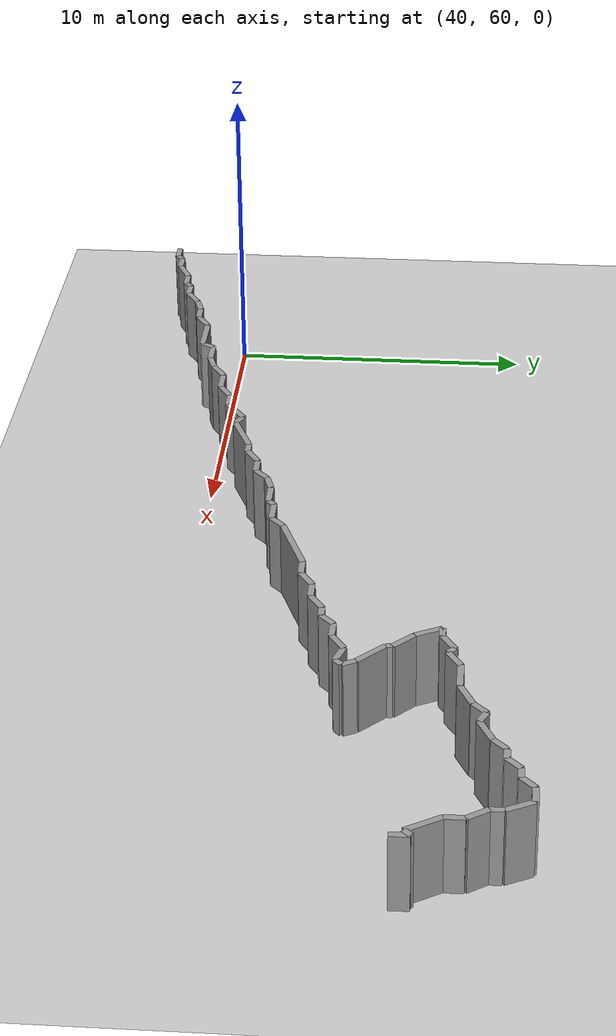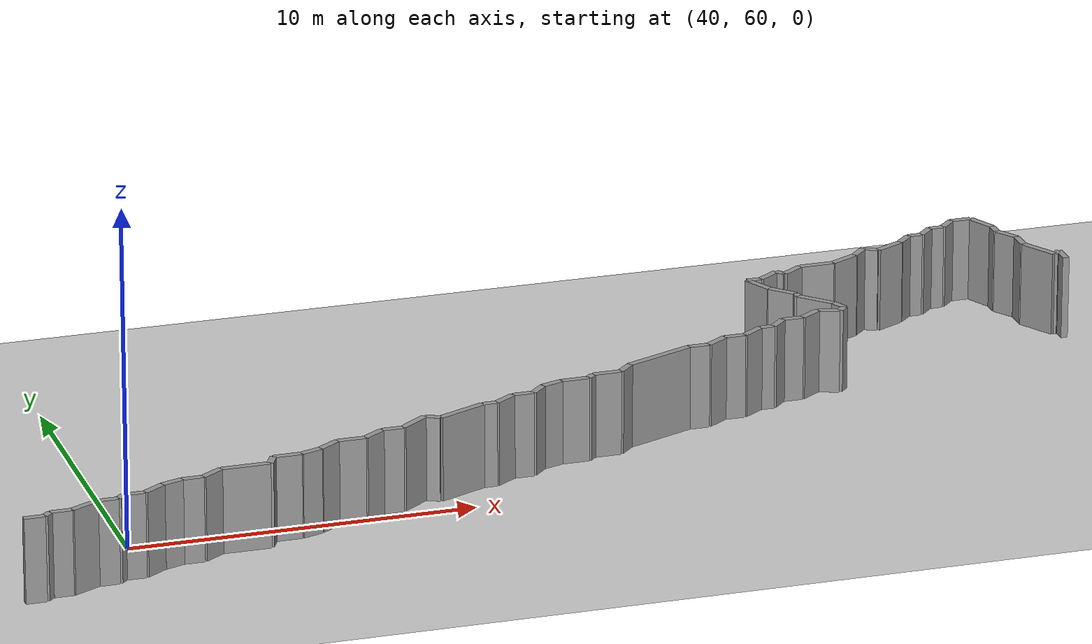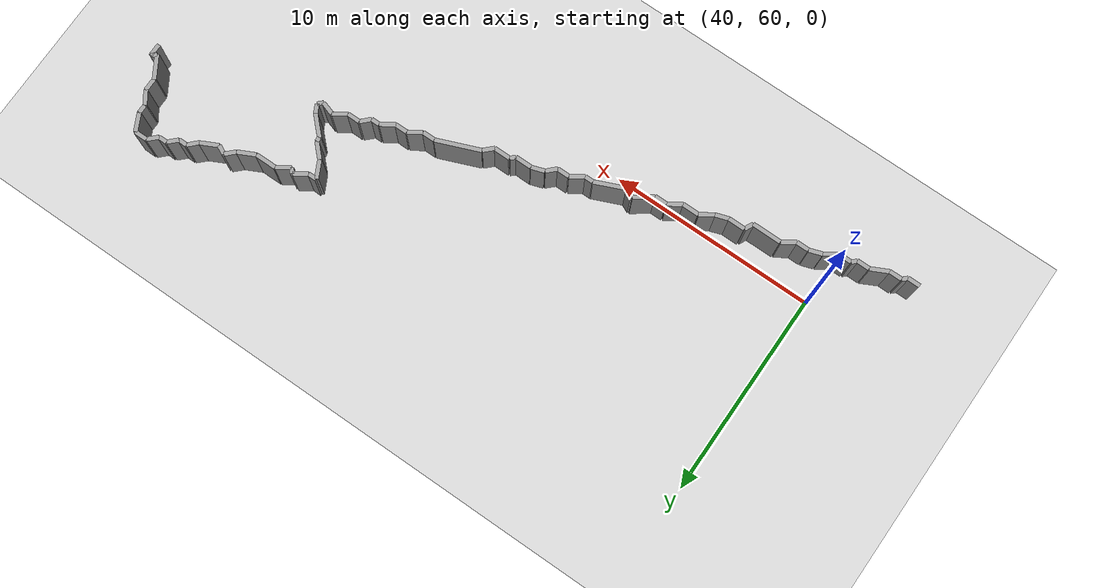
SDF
<sdf version="1.4">
 <world name="1_wall">
  <model name="ground_plane">
   <static>1</static>
   <link name="link">
    <collision name="collision">
     <geometry><plane><normal>0 0 1</normal><size>1000 1000</size></plane></geometry>
     <surface><friction><ode><mu>100</mu><mu2>50</mu2></ode></friction></surface>
    </collision>
    <visual name="visual">
     <cast_shadows>0</cast_shadows>
     <geometry><plane><normal>0 0 1</normal><size>10000 10000</size></plane></geometry>
     <material>
      <script><uri>file://media/materials/scripts/gazebo.material</uri><name>Gazebo/Grey</name></script>
     </material>
    </visual>
    <velocity_decay><linear>0</linear><angular>0</angular></velocity_decay>
   </link>
  </model>
  <model name="Wall_70">
   <static>1</static>
   <link name="Wall_70">
    <collision name="Wall_Collision_70">
     <geometry><box><size>0.6 0.2 2.5</size></box></geometry>
     <pose>0 0 1.25 0 -0 0</pose>
    </collision>
    <visual name="Wall_Visual_70">
     <pose>0 0 1.25 0 -0 0</pose>
     <geometry><box><size>0.6 0.2 2.5</size></box></geometry>
     <material>
      <script><uri>file://media/materials/scripts/gazebo.material</uri><name>Gazebo/Grey</name></script>
     </material>
    </visual>
    <velocity_decay><linear>0</linear><angular>0</angular></velocity_decay>
    <pose>36.7 57.2 0 0 0 0.0</pose>
   </link>
  </model>
  <model name="Wall_71">
   <static>1</static>
   <link name="Wall_71">
    <collision name="Wall_Collision_71">
     <geometry><box><size>0.282842712475 0.2 2.5</size></box></geometry>
     <pose>0 0 1.25 0 -0 0</pose>
    </collision>
    <visual name="Wall_Visual_71">
     <pose>0 0 1.25 0 -0 0</pose>
     <geometry><box><size>0.282842712475 0.2 2.5</size></box></geometry>
     <material>
      <script><uri>file://media/materials/scripts/gazebo.material</uri><name>Gazebo/Grey</name></script>
     </material>
    </visual>
    <velocity_decay><linear>0</linear><angular>0</angular></velocity_decay>
    <pose>37.1 57.3 0 0 0 0.785398163397</pose>
   </link>
  </model>
  <model name="Wall_72">
   <static>1</static>
   <link name="Wall_72">
    <collision name="Wall_Collision_72">
     <geometry><box><size>0.6 0.2 2.5</size></box></geometry>
     <pose>0 0 1.25 0 -0 0</pose>
    </collision>
    <visual name="Wall_Visual_72">
     <pose>0 0 1.25 0 -0 0</pose>
     <geometry><box><size>0.6 0.2 2.5</size></box></geometry>
     <material>
      <script><uri>file://media/materials/scripts/gazebo.material</uri><name>Gazebo/Grey</name></script>
     </material>
    </visual>
    <velocity_decay><linear>0</linear><angular>0</angular></velocity_decay>
    <pose>37.5 57.4 0 0 0 0.0</pose>
   </link>
  </model>
  <model name="Wall_73">
   <static>1</static>
   <link name="Wall_73">
    <collision name="Wall_Collision_73">
     <geometry><box><size>0.894427191 0.2 2.5</size></box></geometry>
     <pose>0 0 1.25 0 -0 0</pose>
    </collision>
    <visual name="Wall_Visual_73">
     <pose>0 0 1.25 0 -0 0</pose>
     <geometry><box><size>0.894427191 0.2 2.5</size></box></geometry>
     <material>
      <script><uri>file://media/materials/scripts/gazebo.material</uri><name>Gazebo/Grey</name></script>
     </material>
    </visual>
    <velocity_decay><linear>0</linear><angular>0</angular></velocity_decay>
    <pose>38.2 57.6 0 0 0 0.463647609001</pose>
   </link>
  </model>
  <model name="Wall_74">
   <static>1</static>
   <link name="Wall_74">
    <collision name="Wall_Collision_74">
     <geometry><box><size>0.6 0.2 2.5</size></box></geometry>
     <pose>0 0 1.25 0 -0 0</pose>
    </collision>
    <visual name="Wall_Visual_74">
     <pose>0 0 1.25 0 -0 0</pose>
     <geometry><box><size>0.6 0.2 2.5</size></box></geometry>
     <material>
      <script><uri>file://media/materials/scripts/gazebo.material</uri><name>Gazebo/Grey</name></script>
     </material>
    </visual>
    <velocity_decay><linear>0</linear><angular>0</angular></velocity_decay>
    <pose>38.9 57.8 0 0 0 0.0</pose>
   </link>
  </model>
  <model name="Wall_75">
   <static>1</static>
   <link name="Wall_75">
    <collision name="Wall_Collision_75">
     <geometry><box><size>0.282842712475 0.2 2.5</size></box></geometry>
     <pose>0 0 1.25 0 -0 0</pose>
    </collision>
    <visual name="Wall_Visual_75">
     <pose>0 0 1.25 0 -0 0</pose>
     <geometry><box><size>0.282842712475 0.2 2.5</size></box></geometry>
     <material>
      <script><uri>file://media/materials/scripts/gazebo.material</uri><name>Gazebo/Grey</name></script>
     </material>
    </visual>
    <velocity_decay><linear>0</linear><angular>0</angular></velocity_decay>
    <pose>39.3 57.9 0 0 0 0.785398163397</pose>
   </link>
  </model>
  <model name="Wall_76">
   <static>1</static>
   <link name="Wall_76">
    <collision name="Wall_Collision_76">
     <geometry><box><size>0.6 0.2 2.5</size></box></geometry>
     <pose>0 0 1.25 0 -0 0</pose>
    </collision>
    <visual name="Wall_Visual_76">
     <pose>0 0 1.25 0 -0 0</pose>
     <geometry><box><size>0.6 0.2 2.5</size></box></geometry>
     <material>
      <script><uri>file://media/materials/scripts/gazebo.material</uri><name>Gazebo/Grey</name></script>
     </material>
    </visual>
    <velocity_decay><linear>0</linear><angular>0</angular></velocity_decay>
    <pose>39.7 58.0 0 0 0 0.0</pose>
   </link>
  </model>
  <model name="Wall_77">
   <static>1</static>
   <link name="Wall_77">
    <collision name="Wall_Collision_77">
     <geometry><box><size>0.721110255093 0.2 2.5</size></box></geometry>
     <pose>0 0 1.25 0 -0 0</pose>
    </collision>
    <visual name="Wall_Visual_77">
     <pose>0 0 1.25 0 -0 0</pose>
     <geometry><box><size>0.721110255093 0.2 2.5</size></box></geometry>
     <material>
      <script><uri>file://media/materials/scripts/gazebo.material</uri><name>Gazebo/Grey</name></script>
     </material>
    </visual>
    <velocity_decay><linear>0</linear><angular>0</angular></velocity_decay>
    <pose>40.3 58.2 0 0 0 0.588002603548</pose>
   </link>
  </model>
  <model name="Wall_78">
   <static>1</static>
   <link name="Wall_78">
    <collision name="Wall_Collision_78">
     <geometry><box><size>0.632455532034 0.2 2.5</size></box></geometry>
     <pose>0 0 1.25 0 -0 0</pose>
    </collision>
    <visual name="Wall_Visual_78">
     <pose>0 0 1.25 0 -0 0</pose>
     <geometry><box><size>0.632455532034 0.2 2.5</size></box></geometry>
     <material>
      <script><uri>file://media/materials/scripts/gazebo.material</uri><name>Gazebo/Grey</name></script>
     </material>
    </visual>
    <velocity_decay><linear>0</linear><angular>0</angular></velocity_decay>
    <pose>40.9 58.5 0 0 0 0.321750554397</pose>
   </link>
  </model>
  <model name="Wall_79">
   <static>1</static>
   <link name="Wall_79">
    <collision name="Wall_Collision_79">
     <geometry><box><size>0.6 0.2 2.5</size></box></geometry>
     <pose>0 0 1.25 0 -0 0</pose>
    </collision>
    <visual name="Wall_Visual_79">
     <pose>0 0 1.25 0 -0 0</pose>
     <geometry><box><size>0.6 0.2 2.5</size></box></geometry>
     <material>
      <script><uri>file://media/materials/scripts/gazebo.material</uri><name>Gazebo/Grey</name></script>
     </material>
    </visual>
    <velocity_decay><linear>0</linear><angular>0</angular></velocity_decay>
    <pose>41.5 58.6 0 0 0 0.0</pose>
   </link>
  </model>
  <model name="Wall_80">
   <static>1</static>
   <link name="Wall_80">
    <collision name="Wall_Collision_80">
     <geometry><box><size>0.721110255093 0.2 2.5</size></box></geometry>
     <pose>0 0 1.25 0 -0 0</pose>
    </collision>
    <visual name="Wall_Visual_80">
     <pose>0 0 1.25 0 -0 0</pose>
     <geometry><box><size>0.721110255093 0.2 2.5</size></box></geometry>
     <material>
      <script><uri>file://media/materials/scripts/gazebo.material</uri><name>Gazebo/Grey</name></script>
     </material>
    </visual>
    <velocity_decay><linear>0</linear><angular>0</angular></velocity_decay>
    <pose>42.1 58.8 0 0 0 0.588002603548</pose>
   </link>
  </model>
  <model name="Wall_81">
   <static>1</static>
   <link name="Wall_81">
    <collision name="Wall_Collision_81">
     <geometry><box><size>1.4 0.2 2.5</size></box></geometry>
     <pose>0 0 1.25 0 -0 0</pose>
    </collision>
    <visual name="Wall_Visual_81">
     <pose>0 0 1.25 0 -0 0</pose>
     <geometry><box><size>1.4 0.2 2.5</size></box></geometry>
     <material>
      <script><uri>file://media/materials/scripts/gazebo.material</uri><name>Gazebo/Grey</name></script>
     </material>
    </visual>
    <velocity_decay><linear>0</linear><angular>0</angular></velocity_decay>
    <pose>43.1 59.0 0 0 0 0.0</pose>
   </link>
  </model>
  <model name="Wall_82">
   <static>1</static>
   <link name="Wall_82">
    <collision name="Wall_Collision_82">
     <geometry><box><size>0.4472135955 0.2 2.5</size></box></geometry>
     <pose>0 0 1.25 0 -0 0</pose>
    </collision>
    <visual name="Wall_Visual_82">
     <pose>0 0 1.25 0 -0 0</pose>
     <geometry><box><size>0.4472135955 0.2 2.5</size></box></geometry>
     <material>
      <script><uri>file://media/materials/scripts/gazebo.material</uri><name>Gazebo/Grey</name></script>
     </material>
    </visual>
    <velocity_decay><linear>0</linear><angular>0</angular></velocity_decay>
    <pose>43.9 59.2 0 0 0 1.10714871779</pose>
   </link>
  </model>
  <model name="Wall_83">
   <static>1</static>
   <link name="Wall_83">
    <collision name="Wall_Collision_83">
     <geometry><box><size>0.8 0.2 2.5</size></box></geometry>
     <pose>0 0 1.25 0 -0 0</pose>
    </collision>
    <visual name="Wall_Visual_83">
     <pose>0 0 1.25 0 -0 0</pose>
     <geometry><box><size>0.8 0.2 2.5</size></box></geometry>
     <material>
      <script><uri>file://media/materials/scripts/gazebo.material</uri><name>Gazebo/Grey</name></script>
     </material>
    </visual>
    <velocity_decay><linear>0</linear><angular>0</angular></velocity_decay>
    <pose>44.4 59.4 0 0 0 0.0</pose>
   </link>
  </model>
  <model name="Wall_84">
   <static>1</static>
   <link name="Wall_84">
    <collision name="Wall_Collision_84">
     <geometry><box><size>0.632455532034 0.2 2.5</size></box></geometry>
     <pose>0 0 1.25 0 -0 0</pose>
    </collision>
    <visual name="Wall_Visual_84">
     <pose>0 0 1.25 0 -0 0</pose>
     <geometry><box><size>0.632455532034 0.2 2.5</size></box></geometry>
     <material>
      <script><uri>file://media/materials/scripts/gazebo.material</uri><name>Gazebo/Grey</name></script>
     </material>
    </visual>
    <velocity_decay><linear>0</linear><angular>0</angular></velocity_decay>
    <pose>45.1 59.5 0 0 0 0.321750554397</pose>
   </link>
  </model>
  <model name="Wall_85">
   <static>1</static>
   <link name="Wall_85">
    <collision name="Wall_Collision_85">
     <geometry><box><size>0.721110255093 0.2 2.5</size></box></geometry>
     <pose>0 0 1.25 0 -0 0</pose>
    </collision>
    <visual name="Wall_Visual_85">
     <pose>0 0 1.25 0 -0 0</pose>
     <geometry><box><size>0.721110255093 0.2 2.5</size></box></geometry>
     <material>
      <script><uri>file://media/materials/scripts/gazebo.material</uri><name>Gazebo/Grey</name></script>
     </material>
    </visual>
    <velocity_decay><linear>0</linear><angular>0</angular></velocity_decay>
    <pose>45.7 59.8 0 0 0 0.588002603548</pose>
   </link>
  </model>
  <model name="Wall_86">
   <static>1</static>
   <link name="Wall_86">
    <collision name="Wall_Collision_86">
     <geometry><box><size>0.8 0.2 2.5</size></box></geometry>
     <pose>0 0 1.25 0 -0 0</pose>
    </collision>
    <visual name="Wall_Visual_86">
     <pose>0 0 1.25 0 -0 0</pose>
     <geometry><box><size>0.8 0.2 2.5</size></box></geometry>
     <material>
      <script><uri>file://media/materials/scripts/gazebo.material</uri><name>Gazebo/Grey</name></script>
     </material>
    </visual>
    <velocity_decay><linear>0</linear><angular>0</angular></velocity_decay>
    <pose>46.4 60.0 0 0 0 0.0</pose>
   </link>
  </model>
  <model name="Wall_87">
   <static>1</static>
   <link name="Wall_87">
    <collision name="Wall_Collision_87">
     <geometry><box><size>0.721110255093 0.2 2.5</size></box></geometry>
     <pose>0 0 1.25 0 -0 0</pose>
    </collision>
    <visual name="Wall_Visual_87">
     <pose>0 0 1.25 0 -0 0</pose>
     <geometry><box><size>0.721110255093 0.2 2.5</size></box></geometry>
     <material>
      <script><uri>file://media/materials/scripts/gazebo.material</uri><name>Gazebo/Grey</name></script>
     </material>
    </visual>
    <velocity_decay><linear>0</linear><angular>0</angular></velocity_decay>
    <pose>47.1 60.2 0 0 0 0.588002603548</pose>
   </link>
  </model>
  <model name="Wall_88">
   <static>1</static>
   <link name="Wall_88">
    <collision name="Wall_Collision_88">
     <geometry><box><size>0.6 0.2 2.5</size></box></geometry>
     <pose>0 0 1.25 0 -0 0</pose>
    </collision>
    <visual name="Wall_Visual_88">
     <pose>0 0 1.25 0 -0 0</pose>
     <geometry><box><size>0.6 0.2 2.5</size></box></geometry>
     <material>
      <script><uri>file://media/materials/scripts/gazebo.material</uri><name>Gazebo/Grey</name></script>
     </material>
    </visual>
    <velocity_decay><linear>0</linear><angular>0</angular></velocity_decay>
    <pose>47.7 60.4 0 0 0 0.0</pose>
   </link>
  </model>
  <model name="Wall_89">
   <static>1</static>
   <link name="Wall_89">
    <collision name="Wall_Collision_89">
     <geometry><box><size>1.0 0.2 2.5</size></box></geometry>
     <pose>0 0 1.25 0 -0 0</pose>
    </collision>
    <visual name="Wall_Visual_89">
     <pose>0 0 1.25 0 -0 0</pose>
     <geometry><box><size>1.0 0.2 2.5</size></box></geometry>
     <material>
      <script><uri>file://media/materials/scripts/gazebo.material</uri><name>Gazebo/Grey</name></script>
     </material>
    </visual>
    <velocity_decay><linear>0</linear><angular>0</angular></velocity_decay>
    <pose>48.4 60.7 0 0 0 0.643501108793</pose>
   </link>
  </model>
  <model name="Wall_90">
   <static>1</static>
   <link name="Wall_90">
    <collision name="Wall_Collision_90">
     <geometry><box><size>0.4472135955 0.2 2.5</size></box></geometry>
     <pose>0 0 1.25 0 -0 0</pose>
    </collision>
    <visual name="Wall_Visual_90">
     <pose>0 0 1.25 0 -0 0</pose>
     <geometry><box><size>0.4472135955 0.2 2.5</size></box></geometry>
     <material>
      <script><uri>file://media/materials/scripts/gazebo.material</uri><name>Gazebo/Grey</name></script>
     </material>
    </visual>
    <velocity_decay><linear>0</linear><angular>0</angular></velocity_decay>
    <pose>49.0 60.9 0 0 0 -0.463647609001</pose>
   </link>
  </model>
  <model name="Wall_91">
   <static>1</static>
   <link name="Wall_91">
    <collision name="Wall_Collision_91">
     <geometry><box><size>1.52315462117 0.2 2.5</size></box></geometry>
     <pose>0 0 1.25 0 -0 0</pose>
    </collision>
    <visual name="Wall_Visual_91">
     <pose>0 0 1.25 0 -0 0</pose>
     <geometry><box><size>1.52315462117 0.2 2.5</size></box></geometry>
     <material>
      <script><uri>file://media/materials/scripts/gazebo.material</uri><name>Gazebo/Grey</name></script>
     </material>
    </visual>
    <velocity_decay><linear>0</linear><angular>0</angular></velocity_decay>
    <pose>49.9 61.1 0 0 0 0.404891786285</pose>
   </link>
  </model>
  <model name="Wall_92">
   <static>1</static>
   <link name="Wall_92">
    <collision name="Wall_Collision_92">
     <geometry><box><size>0.4 0.2 2.5</size></box></geometry>
     <pose>0 0 1.25 0 -0 0</pose>
    </collision>
    <visual name="Wall_Visual_92">
     <pose>0 0 1.25 0 -0 0</pose>
     <geometry><box><size>0.4 0.2 2.5</size></box></geometry>
     <material>
      <script><uri>file://media/materials/scripts/gazebo.material</uri><name>Gazebo/Grey</name></script>
     </material>
    </visual>
    <velocity_decay><linear>0</linear><angular>0</angular></velocity_decay>
    <pose>50.8 61.4 0 0 0 0.0</pose>
   </link>
  </model>
  <model name="Wall_93">
   <static>1</static>
   <link name="Wall_93">
    <collision name="Wall_Collision_93">
     <geometry><box><size>0.721110255093 0.2 2.5</size></box></geometry>
     <pose>0 0 1.25 0 -0 0</pose>
    </collision>
    <visual name="Wall_Visual_93">
     <pose>0 0 1.25 0 -0 0</pose>
     <geometry><box><size>0.721110255093 0.2 2.5</size></box></geometry>
     <material>
      <script><uri>file://media/materials/scripts/gazebo.material</uri><name>Gazebo/Grey</name></script>
     </material>
    </visual>
    <velocity_decay><linear>0</linear><angular>0</angular></velocity_decay>
    <pose>51.3 61.6 0 0 0 0.588002603548</pose>
   </link>
  </model>
  <model name="Wall_94">
   <static>1</static>
   <link name="Wall_94">
    <collision name="Wall_Collision_94">
     <geometry><box><size>0.6 0.2 2.5</size></box></geometry>
     <pose>0 0 1.25 0 -0 0</pose>
    </collision>
    <visual name="Wall_Visual_94">
     <pose>0 0 1.25 0 -0 0</pose>
     <geometry><box><size>0.6 0.2 2.5</size></box></geometry>
     <material>
      <script><uri>file://media/materials/scripts/gazebo.material</uri><name>Gazebo/Grey</name></script>
     </material>
    </visual>
    <velocity_decay><linear>0</linear><angular>0</angular></velocity_decay>
    <pose>51.9 61.8 0 0 0 0.0</pose>
   </link>
  </model>
  <model name="Wall_95">
   <static>1</static>
   <link name="Wall_95">
    <collision name="Wall_Collision_95">
     <geometry><box><size>0.565685424949 0.2 2.5</size></box></geometry>
     <pose>0 0 1.25 0 -0 0</pose>
    </collision>
    <visual name="Wall_Visual_95">
     <pose>0 0 1.25 0 -0 0</pose>
     <geometry><box><size>0.565685424949 0.2 2.5</size></box></geometry>
     <material>
      <script><uri>file://media/materials/scripts/gazebo.material</uri><name>Gazebo/Grey</name></script>
     </material>
    </visual>
    <velocity_decay><linear>0</linear><angular>0</angular></velocity_decay>
    <pose>52.4 62.0 0 0 0 0.785398163397</pose>
   </link>
  </model>
  <model name="Wall_96">
   <static>1</static>
   <link name="Wall_96">
    <collision name="Wall_Collision_96">
     <geometry><box><size>0.632455532034 0.2 2.5</size></box></geometry>
     <pose>0 0 1.25 0 -0 0</pose>
    </collision>
    <visual name="Wall_Visual_96">
     <pose>0 0 1.25 0 -0 0</pose>
     <geometry><box><size>0.632455532034 0.2 2.5</size></box></geometry>
     <material>
      <script><uri>file://media/materials/scripts/gazebo.material</uri><name>Gazebo/Grey</name></script>
     </material>
    </visual>
    <velocity_decay><linear>0</linear><angular>0</angular></velocity_decay>
    <pose>52.9 62.3 0 0 0 0.321750554397</pose>
   </link>
  </model>
  <model name="Wall_97">
   <static>1</static>
   <link name="Wall_97">
    <collision name="Wall_Collision_97">
     <geometry><box><size>0.8 0.2 2.5</size></box></geometry>
     <pose>0 0 1.25 0 -0 0</pose>
    </collision>
    <visual name="Wall_Visual_97">
     <pose>0 0 1.25 0 -0 0</pose>
     <geometry><box><size>0.8 0.2 2.5</size></box></geometry>
     <material>
      <script><uri>file://media/materials/scripts/gazebo.material</uri><name>Gazebo/Grey</name></script>
     </material>
    </visual>
    <velocity_decay><linear>0</linear><angular>0</angular></velocity_decay>
    <pose>53.6 62.4 0 0 0 0.0</pose>
   </link>
  </model>
  <model name="Wall_98">
   <static>1</static>
   <link name="Wall_98">
    <collision name="Wall_Collision_98">
     <geometry><box><size>0.282842712475 0.2 2.5</size></box></geometry>
     <pose>0 0 1.25 0 -0 0</pose>
    </collision>
    <visual name="Wall_Visual_98">
     <pose>0 0 1.25 0 -0 0</pose>
     <geometry><box><size>0.282842712475 0.2 2.5</size></box></geometry>
     <material>
      <script><uri>file://media/materials/scripts/gazebo.material</uri><name>Gazebo/Grey</name></script>
     </material>
    </visual>
    <velocity_decay><linear>0</linear><angular>0</angular></velocity_decay>
    <pose>54.1 62.5 0 0 0 0.785398163397</pose>
   </link>
  </model>
  <model name="Wall_99">
   <static>1</static>
   <link name="Wall_99">
    <collision name="Wall_Collision_99">
     <geometry><box><size>0.8 0.2 2.5</size></box></geometry>
     <pose>0 0 1.25 0 -0 0</pose>
    </collision>
    <visual name="Wall_Visual_99">
     <pose>0 0 1.25 0 -0 0</pose>
     <geometry><box><size>0.8 0.2 2.5</size></box></geometry>
     <material>
      <script><uri>file://media/materials/scripts/gazebo.material</uri><name>Gazebo/Grey</name></script>
     </material>
    </visual>
    <velocity_decay><linear>0</linear><angular>0</angular></velocity_decay>
    <pose>54.6 62.6 0 0 0 0.0</pose>
   </link>
  </model>
  <model name="Wall_100">
   <static>1</static>
   <link name="Wall_100">
    <collision name="Wall_Collision_100">
     <geometry><box><size>0.565685424949 0.2 2.5</size></box></geometry>
     <pose>0 0 1.25 0 -0 0</pose>
    </collision>
    <visual name="Wall_Visual_100">
     <pose>0 0 1.25 0 -0 0</pose>
     <geometry><box><size>0.565685424949 0.2 2.5</size></box></geometry>
     <material>
      <script><uri>file://media/materials/scripts/gazebo.material</uri><name>Gazebo/Grey</name></script>
     </material>
    </visual>
    <velocity_decay><linear>0</linear><angular>0</angular></velocity_decay>
    <pose>55.2 62.8 0 0 0 0.785398163397</pose>
   </link>
  </model>
  <model name="Wall_101">
   <static>1</static>
   <link name="Wall_101">
    <collision name="Wall_Collision_101">
     <geometry><box><size>2.15406592285 0.2 2.5</size></box></geometry>
     <pose>0 0 1.25 0 -0 0</pose>
    </collision>
    <visual name="Wall_Visual_101">
     <pose>0 0 1.25 0 -0 0</pose>
     <geometry><box><size>2.15406592285 0.2 2.5</size></box></geometry>
     <material>
      <script><uri>file://media/materials/scripts/gazebo.material</uri><name>Gazebo/Grey</name></script>
     </material>
    </visual>
    <velocity_decay><linear>0</linear><angular>0</angular></velocity_decay>
    <pose>56.4 63.4 0 0 0 0.380506377112</pose>
   </link>
  </model>
  <model name="Wall_102">
   <static>1</static>
   <link name="Wall_102">
    <collision name="Wall_Collision_102">
     <geometry><box><size>0.6 0.2 2.5</size></box></geometry>
     <pose>0 0 1.25 0 -0 0</pose>
    </collision>
    <visual name="Wall_Visual_102">
     <pose>0 0 1.25 0 -0 0</pose>
     <geometry><box><size>0.6 0.2 2.5</size></box></geometry>
     <material>
      <script><uri>file://media/materials/scripts/gazebo.material</uri><name>Gazebo/Grey</name></script>
     </material>
    </visual>
    <velocity_decay><linear>0</linear><angular>0</angular></velocity_decay>
    <pose>57.7 63.8 0 0 0 0.0</pose>
   </link>
  </model>
  <model name="Wall_103">
   <static>1</static>
   <link name="Wall_103">
    <collision name="Wall_Collision_103">
     <geometry><box><size>0.721110255093 0.2 2.5</size></box></geometry>
     <pose>0 0 1.25 0 -0 0</pose>
    </collision>
    <visual name="Wall_Visual_103">
     <pose>0 0 1.25 0 -0 0</pose>
     <geometry><box><size>0.721110255093 0.2 2.5</size></box></geometry>
     <material>
      <script><uri>file://media/materials/scripts/gazebo.material</uri><name>Gazebo/Grey</name></script>
     </material>
    </visual>
    <velocity_decay><linear>0</linear><angular>0</angular></velocity_decay>
    <pose>58.3 64.0 0 0 0 0.588002603548</pose>
   </link>
  </model>
  <model name="Wall_104">
   <static>1</static>
   <link name="Wall_104">
    <collision name="Wall_Collision_104">
     <geometry><box><size>0.6 0.2 2.5</size></box></geometry>
     <pose>0 0 1.25 0 -0 0</pose>
    </collision>
    <visual name="Wall_Visual_104">
     <pose>0 0 1.25 0 -0 0</pose>
     <geometry><box><size>0.6 0.2 2.5</size></box></geometry>
     <material>
      <script><uri>file://media/materials/scripts/gazebo.material</uri><name>Gazebo/Grey</name></script>
     </material>
    </visual>
    <velocity_decay><linear>0</linear><angular>0</angular></velocity_decay>
    <pose>58.9 64.2 0 0 0 0.0</pose>
   </link>
  </model>
  <model name="Wall_105">
   <static>1</static>
   <link name="Wall_105">
    <collision name="Wall_Collision_105">
     <geometry><box><size>0.721110255093 0.2 2.5</size></box></geometry>
     <pose>0 0 1.25 0 -0 0</pose>
    </collision>
    <visual name="Wall_Visual_105">
     <pose>0 0 1.25 0 -0 0</pose>
     <geometry><box><size>0.721110255093 0.2 2.5</size></box></geometry>
     <material>
      <script><uri>file://media/materials/scripts/gazebo.material</uri><name>Gazebo/Grey</name></script>
     </material>
    </visual>
    <velocity_decay><linear>0</linear><angular>0</angular></velocity_decay>
    <pose>59.5 64.4 0 0 0 0.588002603548</pose>
   </link>
  </model>
  <model name="Wall_106">
   <static>1</static>
   <link name="Wall_106">
    <collision name="Wall_Collision_106">
     <geometry><box><size>0.4 0.2 2.5</size></box></geometry>
     <pose>0 0 1.25 0 -0 0</pose>
    </collision>
    <visual name="Wall_Visual_106">
     <pose>0 0 1.25 0 -0 0</pose>
     <geometry><box><size>0.4 0.2 2.5</size></box></geometry>
     <material>
      <script><uri>file://media/materials/scripts/gazebo.material</uri><name>Gazebo/Grey</name></script>
     </material>
    </visual>
    <velocity_decay><linear>0</linear><angular>0</angular></velocity_decay>
    <pose>60.0 64.6 0 0 0 0.0</pose>
   </link>
  </model>
  <model name="Wall_107">
   <static>1</static>
   <link name="Wall_107">
    <collision name="Wall_Collision_107">
     <geometry><box><size>0.565685424949 0.2 2.5</size></box></geometry>
     <pose>0 0 1.25 0 -0 0</pose>
    </collision>
    <visual name="Wall_Visual_107">
     <pose>0 0 1.25 0 -0 0</pose>
     <geometry><box><size>0.565685424949 0.2 2.5</size></box></geometry>
     <material>
      <script><uri>file://media/materials/scripts/gazebo.material</uri><name>Gazebo/Grey</name></script>
     </material>
    </visual>
    <velocity_decay><linear>0</linear><angular>0</angular></velocity_decay>
    <pose>60.4 64.8 0 0 0 0.785398163397</pose>
   </link>
  </model>
  <model name="Wall_108">
   <static>1</static>
   <link name="Wall_108">
    <collision name="Wall_Collision_108">
     <geometry><box><size>0.6 0.2 2.5</size></box></geometry>
     <pose>0 0 1.25 0 -0 0</pose>
    </collision>
    <visual name="Wall_Visual_108">
     <pose>0 0 1.25 0 -0 0</pose>
     <geometry><box><size>0.6 0.2 2.5</size></box></geometry>
     <material>
      <script><uri>file://media/materials/scripts/gazebo.material</uri><name>Gazebo/Grey</name></script>
     </material>
    </visual>
    <velocity_decay><linear>0</linear><angular>0</angular></velocity_decay>
    <pose>60.9 65.0 0 0 0 0.0</pose>
   </link>
  </model>
  <model name="Wall_109">
   <static>1</static>
   <link name="Wall_109">
    <collision name="Wall_Collision_109">
     <geometry><box><size>0.721110255093 0.2 2.5</size></box></geometry>
     <pose>0 0 1.25 0 -0 0</pose>
    </collision>
    <visual name="Wall_Visual_109">
     <pose>0 0 1.25 0 -0 0</pose>
     <geometry><box><size>0.721110255093 0.2 2.5</size></box></geometry>
     <material>
      <script><uri>file://media/materials/scripts/gazebo.material</uri><name>Gazebo/Grey</name></script>
     </material>
    </visual>
    <velocity_decay><linear>0</linear><angular>0</angular></velocity_decay>
    <pose>61.5 65.2 0 0 0 0.588002603548</pose>
   </link>
  </model>
  <model name="Wall_110">
   <static>1</static>
   <link name="Wall_110">
    <collision name="Wall_Collision_110">
     <geometry><box><size>0.632455532034 0.2 2.5</size></box></geometry>
     <pose>0 0 1.25 0 -0 0</pose>
    </collision>
    <visual name="Wall_Visual_110">
     <pose>0 0 1.25 0 -0 0</pose>
     <geometry><box><size>0.632455532034 0.2 2.5</size></box></geometry>
     <material>
      <script><uri>file://media/materials/scripts/gazebo.material</uri><name>Gazebo/Grey</name></script>
     </material>
    </visual>
    <velocity_decay><linear>0</linear><angular>0</angular></velocity_decay>
    <pose>62.1 65.3 0 0 0 -0.321750554397</pose>
   </link>
  </model>
  <model name="Wall_111">
   <static>1</static>
   <link name="Wall_111">
    <collision name="Wall_Collision_111">
     <geometry><box><size>0.282842712475 0.2 2.5</size></box></geometry>
     <pose>0 0 1.25 0 -0 0</pose>
    </collision>
    <visual name="Wall_Visual_111">
     <pose>0 0 1.25 0 -0 0</pose>
     <geometry><box><size>0.282842712475 0.2 2.5</size></box></geometry>
     <material>
      <script><uri>file://media/materials/scripts/gazebo.material</uri><name>Gazebo/Grey</name></script>
     </material>
    </visual>
    <velocity_decay><linear>0</linear><angular>0</angular></velocity_decay>
    <pose>62.5 65.3 0 0 0 0.785398163397</pose>
   </link>
  </model>
  <model name="Wall_112">
   <static>1</static>
   <link name="Wall_112">
    <collision name="Wall_Collision_112">
     <geometry><box><size>0.4472135955 0.2 2.5</size></box></geometry>
     <pose>0 0 1.25 0 -0 0</pose>
    </collision>
    <visual name="Wall_Visual_112">
     <pose>0 0 1.25 0 -0 0</pose>
     <geometry><box><size>0.4472135955 0.2 2.5</size></box></geometry>
     <material>
      <script><uri>file://media/materials/scripts/gazebo.material</uri><name>Gazebo/Grey</name></script>
     </material>
    </visual>
    <velocity_decay><linear>0</linear><angular>0</angular></velocity_decay>
    <pose>62.5 65.6 0 0 0 2.0344439358</pose>
   </link>
  </model>
  <model name="Wall_113">
   <static>1</static>
   <link name="Wall_113">
    <collision name="Wall_Collision_113">
     <geometry><box><size>1.1313708499 0.2 2.5</size></box></geometry>
     <pose>0 0 1.25 0 -0 0</pose>
    </collision>
    <visual name="Wall_Visual_113">
     <pose>0 0 1.25 0 -0 0</pose>
     <geometry><box><size>1.1313708499 0.2 2.5</size></box></geometry>
     <material>
      <script><uri>file://media/materials/scripts/gazebo.material</uri><name>Gazebo/Grey</name></script>
     </material>
    </visual>
    <velocity_decay><linear>0</linear><angular>0</angular></velocity_decay>
    <pose>62.0 66.2 0 0 0 2.35619449019</pose>
   </link>
  </model>
  <model name="Wall_114">
   <static>1</static>
   <link name="Wall_114">
    <collision name="Wall_Collision_114">
     <geometry><box><size>0.2 0.2 2.5</size></box></geometry>
     <pose>0 0 1.25 0 -0 0</pose>
    </collision>
    <visual name="Wall_Visual_114">
     <pose>0 0 1.25 0 -0 0</pose>
     <geometry><box><size>0.2 0.2 2.5</size></box></geometry>
     <material>
      <script><uri>file://media/materials/scripts/gazebo.material</uri><name>Gazebo/Grey</name></script>
     </material>
    </visual>
    <velocity_decay><linear>0</linear><angular>0</angular></velocity_decay>
    <pose>61.6 66.7 0 0 0 1.57079632679</pose>
   </link>
  </model>
  <model name="Wall_115">
   <static>1</static>
   <link name="Wall_115">
    <collision name="Wall_Collision_115">
     <geometry><box><size>0.848528137424 0.2 2.5</size></box></geometry>
     <pose>0 0 1.25 0 -0 0</pose>
    </collision>
    <visual name="Wall_Visual_115">
     <pose>0 0 1.25 0 -0 0</pose>
     <geometry><box><size>0.848528137424 0.2 2.5</size></box></geometry>
     <material>
      <script><uri>file://media/materials/scripts/gazebo.material</uri><name>Gazebo/Grey</name></script>
     </material>
    </visual>
    <velocity_decay><linear>0</linear><angular>0</angular></velocity_decay>
    <pose>61.3 67.1 0 0 0 2.35619449019</pose>
   </link>
  </model>
  <model name="Wall_116">
   <static>1</static>
   <link name="Wall_116">
    <collision name="Wall_Collision_116">
     <geometry><box><size>0.894427191 0.2 2.5</size></box></geometry>
     <pose>0 0 1.25 0 -0 0</pose>
    </collision>
    <visual name="Wall_Visual_116">
     <pose>0 0 1.25 0 -0 0</pose>
     <geometry><box><size>0.894427191 0.2 2.5</size></box></geometry>
     <material>
      <script><uri>file://media/materials/scripts/gazebo.material</uri><name>Gazebo/Grey</name></script>
     </material>
    </visual>
    <velocity_decay><linear>0</linear><angular>0</angular></velocity_decay>
    <pose>60.8 67.8 0 0 0 2.0344439358</pose>
   </link>
  </model>
  <model name="Wall_117">
   <static>1</static>
   <link name="Wall_117">
    <collision name="Wall_Collision_117">
     <geometry><box><size>0.4 0.2 2.5</size></box></geometry>
     <pose>0 0 1.25 0 -0 0</pose>
    </collision>
    <visual name="Wall_Visual_117">
     <pose>0 0 1.25 0 -0 0</pose>
     <geometry><box><size>0.4 0.2 2.5</size></box></geometry>
     <material>
      <script><uri>file://media/materials/scripts/gazebo.material</uri><name>Gazebo/Grey</name></script>
     </material>
    </visual>
    <velocity_decay><linear>0</linear><angular>0</angular></velocity_decay>
    <pose>60.8 68.2 0 0 0 0.0</pose>
   </link>
  </model>
  <model name="Wall_118">
   <static>1</static>
   <link name="Wall_118">
    <collision name="Wall_Collision_118">
     <geometry><box><size>0.721110255093 0.2 2.5</size></box></geometry>
     <pose>0 0 1.25 0 -0 0</pose>
    </collision>
    <visual name="Wall_Visual_118">
     <pose>0 0 1.25 0 -0 0</pose>
     <geometry><box><size>0.721110255093 0.2 2.5</size></box></geometry>
     <material>
      <script><uri>file://media/materials/scripts/gazebo.material</uri><name>Gazebo/Grey</name></script>
     </material>
    </visual>
    <velocity_decay><linear>0</linear><angular>0</angular></velocity_decay>
    <pose>61.3 68.4 0 0 0 0.588002603548</pose>
   </link>
  </model>
  <model name="Wall_119">
   <static>1</static>
   <link name="Wall_119">
    <collision name="Wall_Collision_119">
     <geometry><box><size>0.282842712475 0.2 2.5</size></box></geometry>
     <pose>0 0 1.25 0 -0 0</pose>
    </collision>
    <visual name="Wall_Visual_119">
     <pose>0 0 1.25 0 -0 0</pose>
     <geometry><box><size>0.282842712475 0.2 2.5</size></box></geometry>
     <material>
      <script><uri>file://media/materials/scripts/gazebo.material</uri><name>Gazebo/Grey</name></script>
     </material>
    </visual>
    <velocity_decay><linear>0</linear><angular>0</angular></velocity_decay>
    <pose>61.7 68.5 0 0 0 -0.785398163397</pose>
   </link>
  </model>
  <model name="Wall_120">
   <static>1</static>
   <link name="Wall_120">
    <collision name="Wall_Collision_120">
     <geometry><box><size>0.721110255093 0.2 2.5</size></box></geometry>
     <pose>0 0 1.25 0 -0 0</pose>
    </collision>
    <visual name="Wall_Visual_120">
     <pose>0 0 1.25 0 -0 0</pose>
     <geometry><box><size>0.721110255093 0.2 2.5</size></box></geometry>
     <material>
      <script><uri>file://media/materials/scripts/gazebo.material</uri><name>Gazebo/Grey</name></script>
     </material>
    </visual>
    <velocity_decay><linear>0</linear><angular>0</angular></velocity_decay>
    <pose>62.1 68.6 0 0 0 0.588002603548</pose>
   </link>
  </model>
  <model name="Wall_121">
   <static>1</static>
   <link name="Wall_121">
    <collision name="Wall_Collision_121">
     <geometry><box><size>1.0 0.2 2.5</size></box></geometry>
     <pose>0 0 1.25 0 -0 0</pose>
    </collision>
    <visual name="Wall_Visual_121">
     <pose>0 0 1.25 0 -0 0</pose>
     <geometry><box><size>1.0 0.2 2.5</size></box></geometry>
     <material>
      <script><uri>file://media/materials/scripts/gazebo.material</uri><name>Gazebo/Grey</name></script>
     </material>
    </visual>
    <velocity_decay><linear>0</linear><angular>0</angular></velocity_decay>
    <pose>62.9 68.8 0 0 0 0.0</pose>
   </link>
  </model>
  <model name="Wall_122">
   <static>1</static>
   <link name="Wall_122">
    <collision name="Wall_Collision_122">
     <geometry><box><size>0.894427191 0.2 2.5</size></box></geometry>
     <pose>0 0 1.25 0 -0 0</pose>
    </collision>
    <visual name="Wall_Visual_122">
     <pose>0 0 1.25 0 -0 0</pose>
     <geometry><box><size>0.894427191 0.2 2.5</size></box></geometry>
     <material>
      <script><uri>file://media/materials/scripts/gazebo.material</uri><name>Gazebo/Grey</name></script>
     </material>
    </visual>
    <velocity_decay><linear>0</linear><angular>0</angular></velocity_decay>
    <pose>63.8 69.0 0 0 0 0.463647609001</pose>
   </link>
  </model>
  <model name="Wall_123">
   <static>1</static>
   <link name="Wall_123">
    <collision name="Wall_Collision_123">
     <geometry><box><size>0.565685424949 0.2 2.5</size></box></geometry>
     <pose>0 0 1.25 0 -0 0</pose>
    </collision>
    <visual name="Wall_Visual_123">
     <pose>0 0 1.25 0 -0 0</pose>
     <geometry><box><size>0.565685424949 0.2 2.5</size></box></geometry>
     <material>
      <script><uri>file://media/materials/scripts/gazebo.material</uri><name>Gazebo/Grey</name></script>
     </material>
    </visual>
    <velocity_decay><linear>0</linear><angular>0</angular></velocity_decay>
    <pose>64.4 69.4 0 0 0 0.785398163397</pose>
   </link>
  </model>
  <model name="Wall_124">
   <static>1</static>
   <link name="Wall_124">
    <collision name="Wall_Collision_124">
     <geometry><box><size>0.4472135955 0.2 2.5</size></box></geometry>
     <pose>0 0 1.25 0 -0 0</pose>
    </collision>
    <visual name="Wall_Visual_124">
     <pose>0 0 1.25 0 -0 0</pose>
     <geometry><box><size>0.4472135955 0.2 2.5</size></box></geometry>
     <material>
      <script><uri>file://media/materials/scripts/gazebo.material</uri><name>Gazebo/Grey</name></script>
     </material>
    </visual>
    <velocity_decay><linear>0</linear><angular>0</angular></velocity_decay>
    <pose>64.8 69.5 0 0 0 -0.463647609001</pose>
   </link>
  </model>
  <model name="Wall_125">
   <static>1</static>
   <link name="Wall_125">
    <collision name="Wall_Collision_125">
     <geometry><box><size>0.894427191 0.2 2.5</size></box></geometry>
     <pose>0 0 1.25 0 -0 0</pose>
    </collision>
    <visual name="Wall_Visual_125">
     <pose>0 0 1.25 0 -0 0</pose>
     <geometry><box><size>0.894427191 0.2 2.5</size></box></geometry>
     <material>
      <script><uri>file://media/materials/scripts/gazebo.material</uri><name>Gazebo/Grey</name></script>
     </material>
    </visual>
    <velocity_decay><linear>0</linear><angular>0</angular></velocity_decay>
    <pose>65.4 69.6 0 0 0 0.463647609001</pose>
   </link>
  </model>
  <model name="Wall_126">
   <static>1</static>
   <link name="Wall_126">
    <collision name="Wall_Collision_126">
     <geometry><box><size>0.565685424949 0.2 2.5</size></box></geometry>
     <pose>0 0 1.25 0 -0 0</pose>
    </collision>
    <visual name="Wall_Visual_126">
     <pose>0 0 1.25 0 -0 0</pose>
     <geometry><box><size>0.565685424949 0.2 2.5</size></box></geometry>
     <material>
      <script><uri>file://media/materials/scripts/gazebo.material</uri><name>Gazebo/Grey</name></script>
     </material>
    </visual>
    <velocity_decay><linear>0</linear><angular>0</angular></velocity_decay>
    <pose>66.0 70.0 0 0 0 0.785398163397</pose>
   </link>
  </model>
  <model name="Wall_127">
   <static>1</static>
   <link name="Wall_127">
    <collision name="Wall_Collision_127">
     <geometry><box><size>0.4 0.2 2.5</size></box></geometry>
     <pose>0 0 1.25 0 -0 0</pose>
    </collision>
    <visual name="Wall_Visual_127">
     <pose>0 0 1.25 0 -0 0</pose>
     <geometry><box><size>0.4 0.2 2.5</size></box></geometry>
     <material>
      <script><uri>file://media/materials/scripts/gazebo.material</uri><name>Gazebo/Grey</name></script>
     </material>
    </visual>
    <velocity_decay><linear>0</linear><angular>0</angular></velocity_decay>
    <pose>66.4 70.2 0 0 0 0.0</pose>
   </link>
  </model>
  <model name="Wall_128">
   <static>1</static>
   <link name="Wall_128">
    <collision name="Wall_Collision_128">
     <geometry><box><size>0.565685424949 0.2 2.5</size></box></geometry>
     <pose>0 0 1.25 0 -0 0</pose>
    </collision>
    <visual name="Wall_Visual_128">
     <pose>0 0 1.25 0 -0 0</pose>
     <geometry><box><size>0.565685424949 0.2 2.5</size></box></geometry>
     <material>
      <script><uri>file://media/materials/scripts/gazebo.material</uri><name>Gazebo/Grey</name></script>
     </material>
    </visual>
    <velocity_decay><linear>0</linear><angular>0</angular></velocity_decay>
    <pose>66.8 70.4 0 0 0 0.785398163397</pose>
   </link>
  </model>
  <model name="Wall_129">
   <static>1</static>
   <link name="Wall_129">
    <collision name="Wall_Collision_129">
     <geometry><box><size>0.4 0.2 2.5</size></box></geometry>
     <pose>0 0 1.25 0 -0 0</pose>
    </collision>
    <visual name="Wall_Visual_129">
     <pose>0 0 1.25 0 -0 0</pose>
     <geometry><box><size>0.4 0.2 2.5</size></box></geometry>
     <material>
      <script><uri>file://media/materials/scripts/gazebo.material</uri><name>Gazebo/Grey</name></script>
     </material>
    </visual>
    <velocity_decay><linear>0</linear><angular>0</angular></velocity_decay>
    <pose>67.2 70.6 0 0 0 0.0</pose>
   </link>
  </model>
  <model name="Wall_130">
   <static>1</static>
   <link name="Wall_130">
    <collision name="Wall_Collision_130">
     <geometry><box><size>0.565685424949 0.2 2.5</size></box></geometry>
     <pose>0 0 1.25 0 -0 0</pose>
    </collision>
    <visual name="Wall_Visual_130">
     <pose>0 0 1.25 0 -0 0</pose>
     <geometry><box><size>0.565685424949 0.2 2.5</size></box></geometry>
     <material>
      <script><uri>file://media/materials/scripts/gazebo.material</uri><name>Gazebo/Grey</name></script>
     </material>
    </visual>
    <velocity_decay><linear>0</linear><angular>0</angular></velocity_decay>
    <pose>67.6 70.8 0 0 0 0.785398163397</pose>
   </link>
  </model>
  <model name="Wall_131">
   <static>1</static>
   <link name="Wall_131">
    <collision name="Wall_Collision_131">
     <geometry><box><size>0.6 0.2 2.5</size></box></geometry>
     <pose>0 0 1.25 0 -0 0</pose>
    </collision>
    <visual name="Wall_Visual_131">
     <pose>0 0 1.25 0 -0 0</pose>
     <geometry><box><size>0.6 0.2 2.5</size></box></geometry>
     <material>
      <script><uri>file://media/materials/scripts/gazebo.material</uri><name>Gazebo/Grey</name></script>
     </material>
    </visual>
    <velocity_decay><linear>0</linear><angular>0</angular></velocity_decay>
    <pose>68.1 71.0 0 0 0 0.0</pose>
   </link>
  </model>
  <model name="Wall_132">
   <static>1</static>
   <link name="Wall_132">
    <collision name="Wall_Collision_132">
     <geometry><box><size>0.894427191 0.2 2.5</size></box></geometry>
     <pose>0 0 1.25 0 -0 0</pose>
    </collision>
    <visual name="Wall_Visual_132">
     <pose>0 0 1.25 0 -0 0</pose>
     <geometry><box><size>0.894427191 0.2 2.5</size></box></geometry>
     <material>
      <script><uri>file://media/materials/scripts/gazebo.material</uri><name>Gazebo/Grey</name></script>
     </material>
    </visual>
    <velocity_decay><linear>0</linear><angular>0</angular></velocity_decay>
    <pose>68.6 70.6 0 0 0 -1.10714871779</pose>
   </link>
  </model>
  <model name="Wall_133">
   <static>1</static>
   <link name="Wall_133">
    <collision name="Wall_Collision_133">
     <geometry><box><size>0.4 0.2 2.5</size></box></geometry>
     <pose>0 0 1.25 0 -0 0</pose>
    </collision>
    <visual name="Wall_Visual_133">
     <pose>0 0 1.25 0 -0 0</pose>
     <geometry><box><size>0.4 0.2 2.5</size></box></geometry>
     <material>
      <script><uri>file://media/materials/scripts/gazebo.material</uri><name>Gazebo/Grey</name></script>
     </material>
    </visual>
    <velocity_decay><linear>0</linear><angular>0</angular></velocity_decay>
    <pose>68.8 70.0 0 0 0 -1.57079632679</pose>
   </link>
  </model>
  <model name="Wall_134">
   <static>1</static>
   <link name="Wall_134">
    <collision name="Wall_Collision_134">
     <geometry><box><size>0.721110255093 0.2 2.5</size></box></geometry>
     <pose>0 0 1.25 0 -0 0</pose>
    </collision>
    <visual name="Wall_Visual_134">
     <pose>0 0 1.25 0 -0 0</pose>
     <geometry><box><size>0.721110255093 0.2 2.5</size></box></geometry>
     <material>
      <script><uri>file://media/materials/scripts/gazebo.material</uri><name>Gazebo/Grey</name></script>
     </material>
    </visual>
    <velocity_decay><linear>0</linear><angular>0</angular></velocity_decay>
    <pose>69.0 69.5 0 0 0 -0.982793723247</pose>
   </link>
  </model>
  <model name="Wall_135">
   <static>1</static>
   <link name="Wall_135">
    <collision name="Wall_Collision_135">
     <geometry><box><size>0.6 0.2 2.5</size></box></geometry>
     <pose>0 0 1.25 0 -0 0</pose>
    </collision>
    <visual name="Wall_Visual_135">
     <pose>0 0 1.25 0 -0 0</pose>
     <geometry><box><size>0.6 0.2 2.5</size></box></geometry>
     <material>
      <script><uri>file://media/materials/scripts/gazebo.material</uri><name>Gazebo/Grey</name></script>
     </material>
    </visual>
    <velocity_decay><linear>0</linear><angular>0</angular></velocity_decay>
    <pose>69.2 68.9 0 0 0 -1.57079632679</pose>
   </link>
  </model>
  <model name="Wall_136">
   <static>1</static>
   <link name="Wall_136">
    <collision name="Wall_Collision_136">
     <geometry><box><size>1.16619037897 0.2 2.5</size></box></geometry>
     <pose>0 0 1.25 0 -0 0</pose>
    </collision>
    <visual name="Wall_Visual_136">
     <pose>0 0 1.25 0 -0 0</pose>
     <geometry><box><size>1.16619037897 0.2 2.5</size></box></geometry>
     <material>
      <script><uri>file://media/materials/scripts/gazebo.material</uri><name>Gazebo/Grey</name></script>
     </material>
    </visual>
    <velocity_decay><linear>0</linear><angular>0</angular></velocity_decay>
    <pose>69.5 68.1 0 0 0 -1.03037682652</pose>
   </link>
  </model>
  <model name="Wall_137">
   <static>1</static>
   <link name="Wall_137">
    <collision name="Wall_Collision_137">
     <geometry><box><size>0.282842712475 0.2 2.5</size></box></geometry>
     <pose>0 0 1.25 0 -0 0</pose>
    </collision>
    <visual name="Wall_Visual_137">
     <pose>0 0 1.25 0 -0 0</pose>
     <geometry><box><size>0.282842712475 0.2 2.5</size></box></geometry>
     <material>
      <script><uri>file://media/materials/scripts/gazebo.material</uri><name>Gazebo/Grey</name></script>
     </material>
    </visual>
    <velocity_decay><linear>0</linear><angular>0</angular></velocity_decay>
    <pose>69.9 67.7 0 0 0 0.785398163397</pose>
   </link>
  </model>
  <model name="Wall_138">
   <static>1</static>
   <link name="Wall_138">
    <collision name="Wall_Collision_138">
     <geometry><box><size>0.6 0.2 2.5</size></box></geometry>
     <pose>0 0 1.25 0 -0 0</pose>
    </collision>
    <visual name="Wall_Visual_138">
     <pose>0 0 1.25 0 -0 0</pose>
     <geometry><box><size>0.6 0.2 2.5</size></box></geometry>
     <material>
      <script><uri>file://media/materials/scripts/gazebo.material</uri><name>Gazebo/Grey</name></script>
     </material>
    </visual>
    <velocity_decay><linear>0</linear><angular>0</angular></velocity_decay>
    <pose>70.0 67.5 0 0 0 -1.57079632679</pose>
   </link>
  </model>
 </world>
</sdf>
